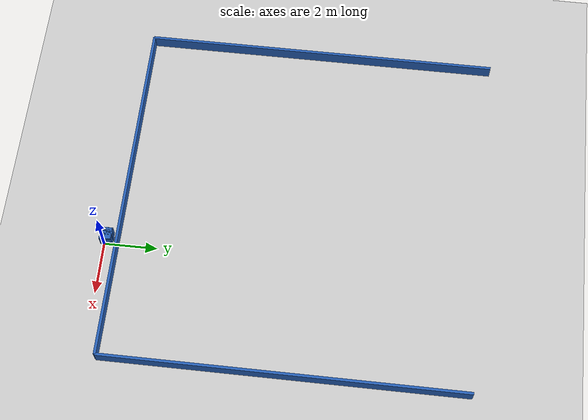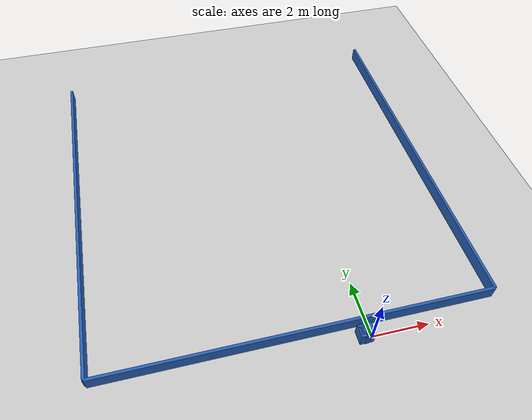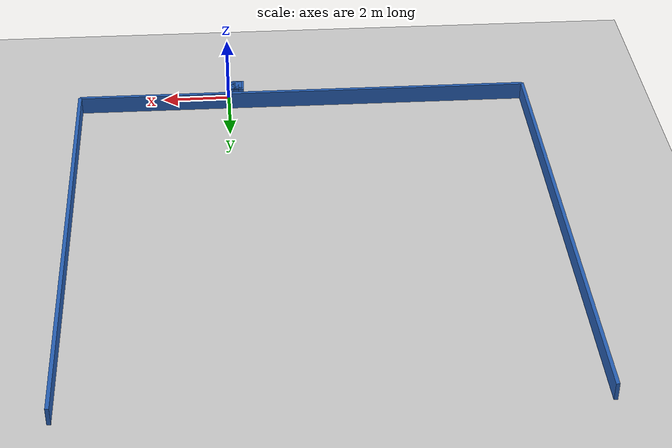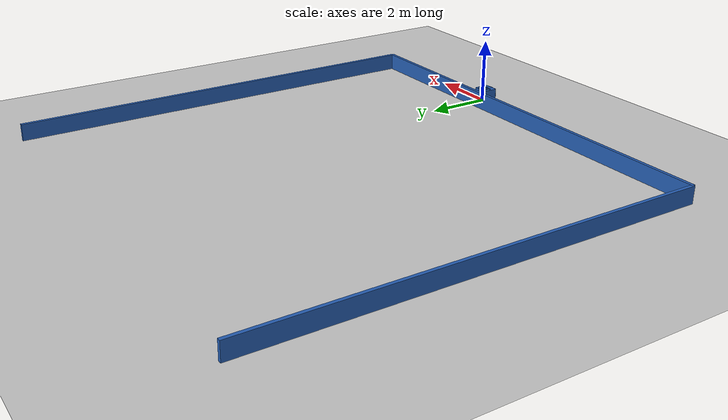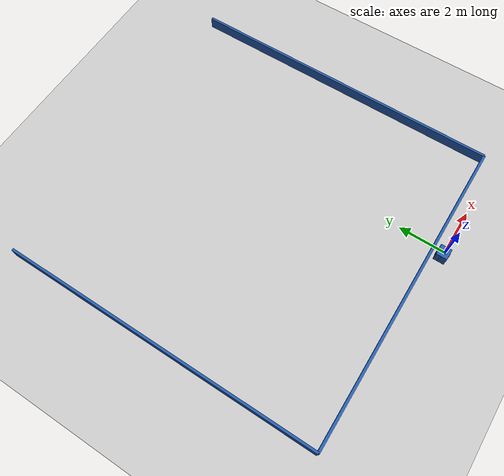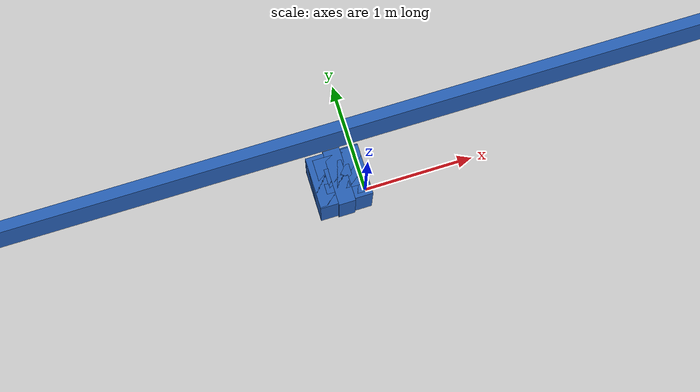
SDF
<?xml version="1.0" ?>
    <sdf version="1.5">
      <world name="default">
        <!-- A global light source -->
        <include>
          <uri>model://sun</uri>
        </include>
        <!-- A ground plane -->
        <include>
          <uri>model://ground_plane</uri>
        </include>

    <model name='libopen_space_final_T2B_114_22'>
      <static>1</static>
      <pose frame=''>-0.225000 0.075000 0.000000 0.000000 0.000000 0.000000</pose>
      <link name='link'>
        <inertial>
          <mass>1</mass>
          <inertia>
            <ixx>0.145833</ixx>
            <ixy>0</ixy>
            <ixz>0</ixz>
            <iyy>0.145833</iyy>
            <iyz>0</iyz>
            <izz>0.125</izz>
          </inertia>
        </inertial>
        <collision name='collision'>
          <geometry>
            <box>
              <size>0.47 0.46 1</size>
            </box>
          </geometry>
          <max_contacts>10</max_contacts>
          <surface>
            <contact>
              <ode/>
            </contact>
            <bounce/>
            <friction>
              <torsional>
                <ode/>
              </torsional>
              <ode/>
            </friction>
          </surface>
        </collision>
        <visual name='visual'>
          <geometry>
            <box>
              <size>0.47 0.46 1</size>
            </box>
          </geometry>
	    <material>
              <ambient>0.152000 0.379000 0.720000 1</ambient>
	      <diffuse>0.152000 0.379000 0.720000 1</diffuse>
          </material>
          <material>
            <script>
              <name>Gazebo/Grey</name>
              <uri>file://media/materials/scripts/gazebo.material</uri>
            </script>
          </material>
        </visual>
        <self_collide>0</self_collide>
        <kinematic>0</kinematic>
        <gravity>1</gravity>
      </link>
      <plugin name='libopen_space_final_T2B_114_22' filename='libopen_space_final_T2B_114_22.so'/>
    </model>

    <model name='libopen_space_final_T2B_112_81'>
      <static>1</static>
      <pose frame=''>-0.225000 0.075000 0.000000 0.000000 0.000000 0.000000</pose>
      <link name='link'>
        <inertial>
          <mass>1</mass>
          <inertia>
            <ixx>0.145833</ixx>
            <ixy>0</ixy>
            <ixz>0</ixz>
            <iyy>0.145833</iyy>
            <iyz>0</iyz>
            <izz>0.125</izz>
          </inertia>
        </inertial>
        <collision name='collision'>
          <geometry>
            <box>
              <size>0.12 0.27 1</size>
            </box>
          </geometry>
          <max_contacts>10</max_contacts>
          <surface>
            <contact>
              <ode/>
            </contact>
            <bounce/>
            <friction>
              <torsional>
                <ode/>
              </torsional>
              <ode/>
            </friction>
          </surface>
        </collision>
        <visual name='visual'>
          <geometry>
            <box>
              <size>0.12 0.27 1</size>
            </box>
          </geometry>
	    <material>
              <ambient>0.152000 0.379000 0.720000 1</ambient>
	      <diffuse>0.152000 0.379000 0.720000 1</diffuse>
          </material>
          <material>
            <script>
              <name>Gazebo/Grey</name>
              <uri>file://media/materials/scripts/gazebo.material</uri>
            </script>
          </material>
        </visual>
        <self_collide>0</self_collide>
        <kinematic>0</kinematic>
        <gravity>1</gravity>
      </link>
      <plugin name='libopen_space_final_T2B_112_81' filename='libopen_space_final_T2B_112_81.so'/>
    </model>

    <model name='libopen_space_final_T2B_51_19'>
      <static>1</static>
      <pose frame=''>-0.225000 0.075000 0.000000 0.000000 0.000000 0.000000</pose>
      <link name='link'>
        <inertial>
          <mass>1</mass>
          <inertia>
            <ixx>0.145833</ixx>
            <ixy>0</ixy>
            <ixz>0</ixz>
            <iyy>0.145833</iyy>
            <iyz>0</iyz>
            <izz>0.125</izz>
          </inertia>
        </inertial>
        <collision name='collision'>
          <geometry>
            <box>
              <size>0.22 0.16 1</size>
            </box>
          </geometry>
          <max_contacts>10</max_contacts>
          <surface>
            <contact>
              <ode/>
            </contact>
            <bounce/>
            <friction>
              <torsional>
                <ode/>
              </torsional>
              <ode/>
            </friction>
          </surface>
        </collision>
        <visual name='visual'>
          <geometry>
            <box>
              <size>0.22 0.16 1</size>
            </box>
          </geometry>
	    <material>
              <ambient>0.152000 0.379000 0.720000 1</ambient>
	      <diffuse>0.152000 0.379000 0.720000 1</diffuse>
          </material>
          <material>
            <script>
              <name>Gazebo/Grey</name>
              <uri>file://media/materials/scripts/gazebo.material</uri>
            </script>
          </material>
        </visual>
        <self_collide>0</self_collide>
        <kinematic>0</kinematic>
        <gravity>1</gravity>
      </link>
      <plugin name='libopen_space_final_T2B_51_19' filename='libopen_space_final_T2B_51_19.so'/>
    </model>

    <model name='libopen_space_final_T2B_87_56'>
      <static>1</static>
      <pose frame=''>-0.225000 0.075000 0.000000 0.000000 0.000000 0.000000</pose>
      <link name='link'>
        <inertial>
          <mass>1</mass>
          <inertia>
            <ixx>0.145833</ixx>
            <ixy>0</ixy>
            <ixz>0</ixz>
            <iyy>0.145833</iyy>
            <iyz>0</iyz>
            <izz>0.125</izz>
          </inertia>
        </inertial>
        <collision name='collision'>
          <geometry>
            <box>
              <size>0.46 0.38 1</size>
            </box>
          </geometry>
          <max_contacts>10</max_contacts>
          <surface>
            <contact>
              <ode/>
            </contact>
            <bounce/>
            <friction>
              <torsional>
                <ode/>
              </torsional>
              <ode/>
            </friction>
          </surface>
        </collision>
        <visual name='visual'>
          <geometry>
            <box>
              <size>0.46 0.38 1</size>
            </box>
          </geometry>
	    <material>
              <ambient>0.152000 0.379000 0.720000 1</ambient>
	      <diffuse>0.152000 0.379000 0.720000 1</diffuse>
          </material>
          <material>
            <script>
              <name>Gazebo/Grey</name>
              <uri>file://media/materials/scripts/gazebo.material</uri>
            </script>
          </material>
        </visual>
        <self_collide>0</self_collide>
        <kinematic>0</kinematic>
        <gravity>1</gravity>
      </link>
      <plugin name='libopen_space_final_T2B_87_56' filename='libopen_space_final_T2B_87_56.so'/>
    </model>

    <model name='libopen_space_final_T2B_118_50'>
      <static>1</static>
      <pose frame=''>-0.225000 0.075000 0.000000 0.000000 0.000000 0.000000</pose>
      <link name='link'>
        <inertial>
          <mass>1</mass>
          <inertia>
            <ixx>0.145833</ixx>
            <ixy>0</ixy>
            <ixz>0</ixz>
            <iyy>0.145833</iyy>
            <iyz>0</iyz>
            <izz>0.125</izz>
          </inertia>
        </inertial>
        <collision name='collision'>
          <geometry>
            <box>
              <size>0.30 0.25 1</size>
            </box>
          </geometry>
          <max_contacts>10</max_contacts>
          <surface>
            <contact>
              <ode/>
            </contact>
            <bounce/>
            <friction>
              <torsional>
                <ode/>
              </torsional>
              <ode/>
            </friction>
          </surface>
        </collision>
        <visual name='visual'>
          <geometry>
            <box>
              <size>0.30 0.25 1</size>
            </box>
          </geometry>
	    <material>
              <ambient>0.152000 0.379000 0.720000 1</ambient>
	      <diffuse>0.152000 0.379000 0.720000 1</diffuse>
          </material>
          <material>
            <script>
              <name>Gazebo/Grey</name>
              <uri>file://media/materials/scripts/gazebo.material</uri>
            </script>
          </material>
        </visual>
        <self_collide>0</self_collide>
        <kinematic>0</kinematic>
        <gravity>1</gravity>
      </link>
      <plugin name='libopen_space_final_T2B_118_50' filename='libopen_space_final_T2B_118_50.so'/>
    </model>

    <model name='libopen_space_final_T2B_79_14'>
      <static>1</static>
      <pose frame=''>-0.225000 0.075000 0.000000 0.000000 0.000000 0.000000</pose>
      <link name='link'>
        <inertial>
          <mass>1</mass>
          <inertia>
            <ixx>0.145833</ixx>
            <ixy>0</ixy>
            <ixz>0</ixz>
            <iyy>0.145833</iyy>
            <iyz>0</iyz>
            <izz>0.125</izz>
          </inertia>
        </inertial>
        <collision name='collision'>
          <geometry>
            <box>
              <size>0.13 0.24 1</size>
            </box>
          </geometry>
          <max_contacts>10</max_contacts>
          <surface>
            <contact>
              <ode/>
            </contact>
            <bounce/>
            <friction>
              <torsional>
                <ode/>
              </torsional>
              <ode/>
            </friction>
          </surface>
        </collision>
        <visual name='visual'>
          <geometry>
            <box>
              <size>0.13 0.24 1</size>
            </box>
          </geometry>
	    <material>
              <ambient>0.152000 0.379000 0.720000 1</ambient>
	      <diffuse>0.152000 0.379000 0.720000 1</diffuse>
          </material>
          <material>
            <script>
              <name>Gazebo/Grey</name>
              <uri>file://media/materials/scripts/gazebo.material</uri>
            </script>
          </material>
        </visual>
        <self_collide>0</self_collide>
        <kinematic>0</kinematic>
        <gravity>1</gravity>
      </link>
      <plugin name='libopen_space_final_T2B_79_14' filename='libopen_space_final_T2B_79_14.so'/>
    </model>

    <model name='libopen_space_final_T2B_80_70'>
      <static>1</static>
      <pose frame=''>-0.225000 0.075000 0.000000 0.000000 0.000000 0.000000</pose>
      <link name='link'>
        <inertial>
          <mass>1</mass>
          <inertia>
            <ixx>0.145833</ixx>
            <ixy>0</ixy>
            <ixz>0</ixz>
            <iyy>0.145833</iyy>
            <iyz>0</iyz>
            <izz>0.125</izz>
          </inertia>
        </inertial>
        <collision name='collision'>
          <geometry>
            <box>
              <size>0.17 0.17 1</size>
            </box>
          </geometry>
          <max_contacts>10</max_contacts>
          <surface>
            <contact>
              <ode/>
            </contact>
            <bounce/>
            <friction>
              <torsional>
                <ode/>
              </torsional>
              <ode/>
            </friction>
          </surface>
        </collision>
        <visual name='visual'>
          <geometry>
            <box>
              <size>0.17 0.17 1</size>
            </box>
          </geometry>
	    <material>
              <ambient>0.152000 0.379000 0.720000 1</ambient>
	      <diffuse>0.152000 0.379000 0.720000 1</diffuse>
          </material>
          <material>
            <script>
              <name>Gazebo/Grey</name>
              <uri>file://media/materials/scripts/gazebo.material</uri>
            </script>
          </material>
        </visual>
        <self_collide>0</self_collide>
        <kinematic>0</kinematic>
        <gravity>1</gravity>
      </link>
      <plugin name='libopen_space_final_T2B_80_70' filename='libopen_space_final_T2B_80_70.so'/>
    </model>

    <model name='libopen_space_final_T2B_125_67'>
      <static>1</static>
      <pose frame=''>-0.225000 0.075000 0.000000 0.000000 0.000000 0.000000</pose>
      <link name='link'>
        <inertial>
          <mass>1</mass>
          <inertia>
            <ixx>0.145833</ixx>
            <ixy>0</ixy>
            <ixz>0</ixz>
            <iyy>0.145833</iyy>
            <iyz>0</iyz>
            <izz>0.125</izz>
          </inertia>
        </inertial>
        <collision name='collision'>
          <geometry>
            <box>
              <size>0.15 0.49 1</size>
            </box>
          </geometry>
          <max_contacts>10</max_contacts>
          <surface>
            <contact>
              <ode/>
            </contact>
            <bounce/>
            <friction>
              <torsional>
                <ode/>
              </torsional>
              <ode/>
            </friction>
          </surface>
        </collision>
        <visual name='visual'>
          <geometry>
            <box>
              <size>0.15 0.49 1</size>
            </box>
          </geometry>
	    <material>
              <ambient>0.152000 0.379000 0.720000 1</ambient>
	      <diffuse>0.152000 0.379000 0.720000 1</diffuse>
          </material>
          <material>
            <script>
              <name>Gazebo/Grey</name>
              <uri>file://media/materials/scripts/gazebo.material</uri>
            </script>
          </material>
        </visual>
        <self_collide>0</self_collide>
        <kinematic>0</kinematic>
        <gravity>1</gravity>
      </link>
      <plugin name='libopen_space_final_T2B_125_67' filename='libopen_space_final_T2B_125_67.so'/>
    </model>

    <model name='libopen_space_final_T2B_125_48'>
      <static>1</static>
      <pose frame=''>-0.225000 0.075000 0.000000 0.000000 0.000000 0.000000</pose>
      <link name='link'>
        <inertial>
          <mass>1</mass>
          <inertia>
            <ixx>0.145833</ixx>
            <ixy>0</ixy>
            <ixz>0</ixz>
            <iyy>0.145833</iyy>
            <iyz>0</iyz>
            <izz>0.125</izz>
          </inertia>
        </inertial>
        <collision name='collision'>
          <geometry>
            <box>
              <size>0.36 0.39 1</size>
            </box>
          </geometry>
          <max_contacts>10</max_contacts>
          <surface>
            <contact>
              <ode/>
            </contact>
            <bounce/>
            <friction>
              <torsional>
                <ode/>
              </torsional>
              <ode/>
            </friction>
          </surface>
        </collision>
        <visual name='visual'>
          <geometry>
            <box>
              <size>0.36 0.39 1</size>
            </box>
          </geometry>
	    <material>
              <ambient>0.152000 0.379000 0.720000 1</ambient>
	      <diffuse>0.152000 0.379000 0.720000 1</diffuse>
          </material>
          <material>
            <script>
              <name>Gazebo/Grey</name>
              <uri>file://media/materials/scripts/gazebo.material</uri>
            </script>
          </material>
        </visual>
        <self_collide>0</self_collide>
        <kinematic>0</kinematic>
        <gravity>1</gravity>
      </link>
      <plugin name='libopen_space_final_T2B_125_48' filename='libopen_space_final_T2B_125_48.so'/>
    </model>

    <model name='libopen_space_final_T2B_79_93'>
      <static>1</static>
      <pose frame=''>-0.225000 0.075000 0.000000 0.000000 0.000000 0.000000</pose>
      <link name='link'>
        <inertial>
          <mass>1</mass>
          <inertia>
            <ixx>0.145833</ixx>
            <ixy>0</ixy>
            <ixz>0</ixz>
            <iyy>0.145833</iyy>
            <iyz>0</iyz>
            <izz>0.125</izz>
          </inertia>
        </inertial>
        <collision name='collision'>
          <geometry>
            <box>
              <size>0.29 0.25 1</size>
            </box>
          </geometry>
          <max_contacts>10</max_contacts>
          <surface>
            <contact>
              <ode/>
            </contact>
            <bounce/>
            <friction>
              <torsional>
                <ode/>
              </torsional>
              <ode/>
            </friction>
          </surface>
        </collision>
        <visual name='visual'>
          <geometry>
            <box>
              <size>0.29 0.25 1</size>
            </box>
          </geometry>
	    <material>
              <ambient>0.152000 0.379000 0.720000 1</ambient>
	      <diffuse>0.152000 0.379000 0.720000 1</diffuse>
          </material>
          <material>
            <script>
              <name>Gazebo/Grey</name>
              <uri>file://media/materials/scripts/gazebo.material</uri>
            </script>
          </material>
        </visual>
        <self_collide>0</self_collide>
        <kinematic>0</kinematic>
        <gravity>1</gravity>
      </link>
      <plugin name='libopen_space_final_T2B_79_93' filename='libopen_space_final_T2B_79_93.so'/>
    </model>

    <model name='libopen_space_final_T2B_94_31'>
      <static>1</static>
      <pose frame=''>-0.225000 0.075000 0.000000 0.000000 0.000000 0.000000</pose>
      <link name='link'>
        <inertial>
          <mass>1</mass>
          <inertia>
            <ixx>0.145833</ixx>
            <ixy>0</ixy>
            <ixz>0</ixz>
            <iyy>0.145833</iyy>
            <iyz>0</iyz>
            <izz>0.125</izz>
          </inertia>
        </inertial>
        <collision name='collision'>
          <geometry>
            <box>
              <size>0.22 0.18 1</size>
            </box>
          </geometry>
          <max_contacts>10</max_contacts>
          <surface>
            <contact>
              <ode/>
            </contact>
            <bounce/>
            <friction>
              <torsional>
                <ode/>
              </torsional>
              <ode/>
            </friction>
          </surface>
        </collision>
        <visual name='visual'>
          <geometry>
            <box>
              <size>0.22 0.18 1</size>
            </box>
          </geometry>
	    <material>
              <ambient>0.152000 0.379000 0.720000 1</ambient>
	      <diffuse>0.152000 0.379000 0.720000 1</diffuse>
          </material>
          <material>
            <script>
              <name>Gazebo/Grey</name>
              <uri>file://media/materials/scripts/gazebo.material</uri>
            </script>
          </material>
        </visual>
        <self_collide>0</self_collide>
        <kinematic>0</kinematic>
        <gravity>1</gravity>
      </link>
      <plugin name='libopen_space_final_T2B_94_31' filename='libopen_space_final_T2B_94_31.so'/>
    </model>

    <model name='libopen_space_final_T2B_103_35'>
      <static>1</static>
      <pose frame=''>-0.225000 0.075000 0.000000 0.000000 0.000000 0.000000</pose>
      <link name='link'>
        <inertial>
          <mass>1</mass>
          <inertia>
            <ixx>0.145833</ixx>
            <ixy>0</ixy>
            <ixz>0</ixz>
            <iyy>0.145833</iyy>
            <iyz>0</iyz>
            <izz>0.125</izz>
          </inertia>
        </inertial>
        <collision name='collision'>
          <geometry>
            <box>
              <size>0.47 0.44 1</size>
            </box>
          </geometry>
          <max_contacts>10</max_contacts>
          <surface>
            <contact>
              <ode/>
            </contact>
            <bounce/>
            <friction>
              <torsional>
                <ode/>
              </torsional>
              <ode/>
            </friction>
          </surface>
        </collision>
        <visual name='visual'>
          <geometry>
            <box>
              <size>0.47 0.44 1</size>
            </box>
          </geometry>
	    <material>
              <ambient>0.152000 0.379000 0.720000 1</ambient>
	      <diffuse>0.152000 0.379000 0.720000 1</diffuse>
          </material>
          <material>
            <script>
              <name>Gazebo/Grey</name>
              <uri>file://media/materials/scripts/gazebo.material</uri>
            </script>
          </material>
        </visual>
        <self_collide>0</self_collide>
        <kinematic>0</kinematic>
        <gravity>1</gravity>
      </link>
      <plugin name='libopen_space_final_T2B_103_35' filename='libopen_space_final_T2B_103_35.so'/>
    </model>

    <model name='libopen_space_final_T2B_90_7'>
      <static>1</static>
      <pose frame=''>-0.225000 0.075000 0.000000 0.000000 0.000000 0.000000</pose>
      <link name='link'>
        <inertial>
          <mass>1</mass>
          <inertia>
            <ixx>0.145833</ixx>
            <ixy>0</ixy>
            <ixz>0</ixz>
            <iyy>0.145833</iyy>
            <iyz>0</iyz>
            <izz>0.125</izz>
          </inertia>
        </inertial>
        <collision name='collision'>
          <geometry>
            <box>
              <size>0.16 0.31 1</size>
            </box>
          </geometry>
          <max_contacts>10</max_contacts>
          <surface>
            <contact>
              <ode/>
            </contact>
            <bounce/>
            <friction>
              <torsional>
                <ode/>
              </torsional>
              <ode/>
            </friction>
          </surface>
        </collision>
        <visual name='visual'>
          <geometry>
            <box>
              <size>0.16 0.31 1</size>
            </box>
          </geometry>
	    <material>
              <ambient>0.152000 0.379000 0.720000 1</ambient>
	      <diffuse>0.152000 0.379000 0.720000 1</diffuse>
          </material>
          <material>
            <script>
              <name>Gazebo/Grey</name>
              <uri>file://media/materials/scripts/gazebo.material</uri>
            </script>
          </material>
        </visual>
        <self_collide>0</self_collide>
        <kinematic>0</kinematic>
        <gravity>1</gravity>
      </link>
      <plugin name='libopen_space_final_T2B_90_7' filename='libopen_space_final_T2B_90_7.so'/>
    </model>

        <model name='bottom_wall'>
          <static>1</static>
          <pose frame=''>-2.25 0.5 0.000000 0.000000 0.000000 1.57079632</pose>
          <link name='link'>
            <inertial>
            <mass>1</mass>
            <inertia>
              <ixx>0.145833</ixx>
              <ixy>0</ixy>
              <ixz>0</ixz>
              <iyy>0.145833</iyy>
              <iyz>0</iyz>
              <izz>0.125</izz>
            </inertia>
            </inertial>
            <collision name='collision'>
            <geometry>
              <box>
              <size>0.1 13.5 1</size>
              </box>
            </geometry>
            <max_contacts>10</max_contacts>
            <surface>
              <contact>
              <ode/>
              </contact>
              <bounce/>
              <friction>
              <torsional>
                <ode/>
              </torsional>
              <ode/>
              </friction>
            </surface>
            </collision>
            <visual name='visual'>
            <geometry>
              <box>
              <size>0.1 13.5 1</size>
              </box>
            </geometry>
            <material>
              <ambient>0.152000 0.379000 0.720000 1</ambient>
            <diffuse>0.152000 0.379000 0.720000 1</diffuse>
            </material>
            <material>
              <script>
              <name>Gazebo/Grey</name>
              <uri>file://media/materials/scripts/gazebo.material</uri>
              </script>
            </material>
            </visual>
            <self_collide>0</self_collide>
            <kinematic>0</kinematic>
            <gravity>1</gravity>
          </link>
        </model>

        <model name='left_wall'>
          <static>1</static>
          <pose frame=''>-9 7.25 0.000000 0.000000 0.000000 0.000000</pose>
          <link name='link'>
            <inertial>
            <mass>1</mass>
            <inertia>
              <ixx>0.145833</ixx>
              <ixy>0</ixy>
              <ixz>0</ixz>
              <iyy>0.145833</iyy>
              <iyz>0</iyz>
              <izz>0.125</izz>
            </inertia>
            </inertial>
            <collision name='collision'>
            <geometry>
              <box>
              <size>0.1 13.5 1</size>
              </box>
            </geometry>
            <max_contacts>10</max_contacts>
            <surface>
              <contact>
              <ode/>
              </contact>
              <bounce/>
              <friction>
              <torsional>
                <ode/>
              </torsional>
              <ode/>
              </friction>
            </surface>
            </collision>
            <visual name='visual'>
            <geometry>
              <box>
              <size>0.1 13.5 1</size>
              </box>
            </geometry>
            <material>
              <ambient>0.152000 0.379000 0.720000 1</ambient>
            <diffuse>0.152000 0.379000 0.720000 1</diffuse>
            </material>
            <material>
              <script>
              <name>Gazebo/Grey</name>
              <uri>file://media/materials/scripts/gazebo.material</uri>
              </script>
            </material>
            </visual>
            <self_collide>0</self_collide>
            <kinematic>0</kinematic>
            <gravity>1</gravity>
          </link>
        </model>

        <model name='right_wall'>
          <static>1</static>
          <pose frame=''>4.5 7.25 0.000000 0.000000 0.000000 0.000000</pose>
          <link name='link'>
            <inertial>
            <mass>1</mass>
            <inertia>
              <ixx>0.145833</ixx>
              <ixy>0</ixy>
              <ixz>0</ixz>
              <iyy>0.145833</iyy>
              <iyz>0</iyz>
              <izz>0.125</izz>
            </inertia>
            </inertial>
            <collision name='collision'>
            <geometry>
              <box>
              <size>0.1 13.5 1</size>
              </box>
            </geometry>
            <max_contacts>10</max_contacts>
            <surface>
              <contact>
              <ode/>
              </contact>
              <bounce/>
              <friction>
              <torsional>
                <ode/>
              </torsional>
              <ode/>
              </friction>
            </surface>
            </collision>
            <visual name='visual'>
            <geometry>
              <box>
              <size>0.1 13.5 1</size>
              </box>
            </geometry>
            <material>
              <ambient>0.152000 0.379000 0.720000 1</ambient>
            <diffuse>0.152000 0.379000 0.720000 1</diffuse>
            </material>
            <material>
              <script>
              <name>Gazebo/Grey</name>
              <uri>file://media/materials/scripts/gazebo.material</uri>
              </script>
            </material>
            </visual>
            <self_collide>0</self_collide>
            <kinematic>0</kinematic>
            <gravity>1</gravity>
          </link>
        </model>

      </world>
    </sdf>"
